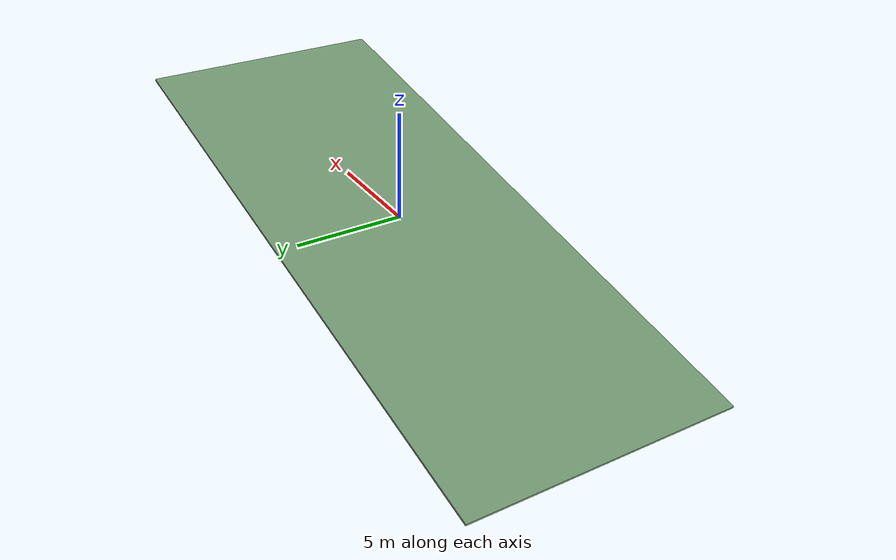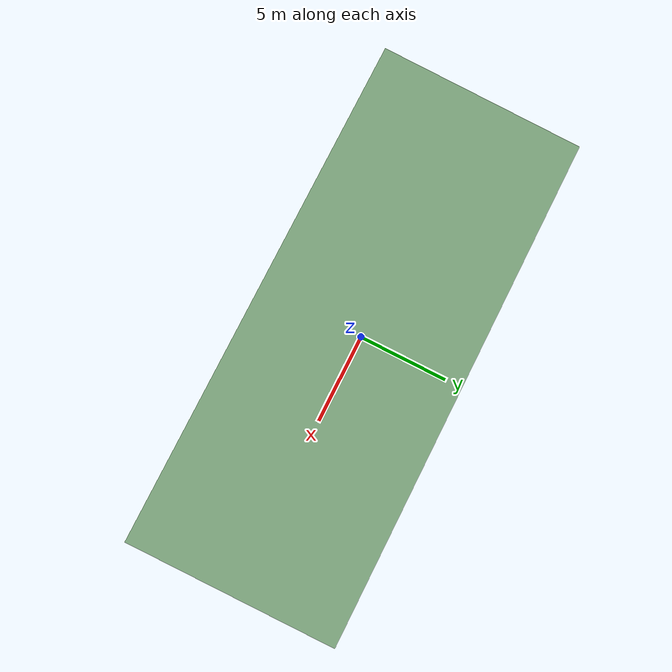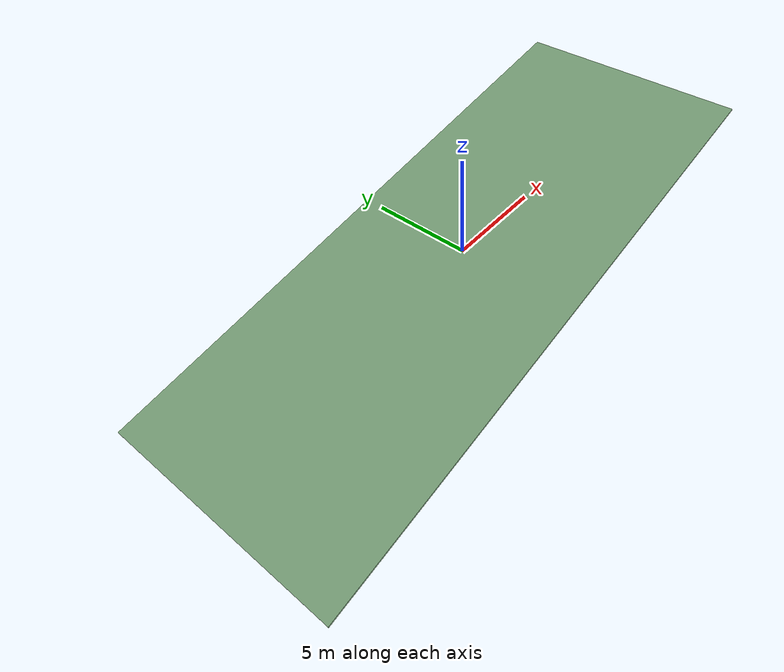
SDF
<?xml version="1.0" ?>
<sdf version="1.6">
  <world name="default">
    <include>
      <uri>model://sun</uri>
    </include>

    <physics name="default_physics" type="ode">
      <max_step_size>0.00025</max_step_size>
      <real_time_factor>1</real_time_factor>
      <real_time_update_rate>1000</real_time_update_rate>
      <ode>
        <solver>
          <type>quick</type>
          <iters>50</iters>
          <sor>1.3</sor>
        </solver>
        <constraints>
          <cfm>0.0</cfm>
          <erp>0.2</erp>
          <contact_max_correcting_vel>100.0</contact_max_correcting_vel>
          <contact_surface_layer>0.001</contact_surface_layer>
        </constraints>
      </ode>
    </physics>

    <model name="tracer_slope_ground">
      <static>true</static>
      <pose>0 0 -0.049240 0 -0.174533 0</pose>
      <link name="link">
        <collision name="collision">
          <geometry>
            <box>
              <size>30 12 0.1</size>
            </box>
          </geometry>

          <surface>
            <friction>
              <ode>
                <mu>0.8</mu>
                <mu2>0.8</mu2>
                <slip1>0.0</slip1>
                <slip2>0.0</slip2>
              </ode>
            </friction>
            <contact>
              <ode>
                <kp>1000000.0</kp>
                <kd>100.0</kd>
                <max_vel>0.01</max_vel>
                <min_depth>0.001</min_depth>
              </ode>
            </contact>
          </surface>
        </collision>
        <visual name="visual">
          <geometry>
            <box>
              <size>30 12 0.1</size>
            </box>
          </geometry>
          <material>
            <ambient>0.35 0.45 0.35 1</ambient>
            <diffuse>0.45 0.60 0.45 1</diffuse>
          </material>
        </visual>
      </link>
    </model>

  </world>
</sdf>
